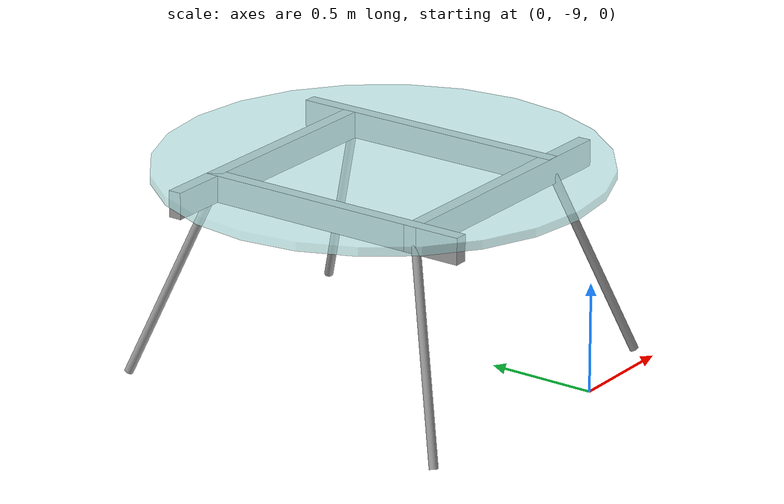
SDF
<?xml version='1.0'?>
<sdf version='1.7'>
  <model name='my_round_table'>
    <link name='link_0'>
      <inertial>
        <mass>1</mass>
        <inertia>
          <ixx>0.145833</ixx>
          <ixy>0</ixy>
          <ixz>0</ixz>
          <iyy>0.145833</iyy>
          <iyz>0</iyz>
          <izz>0.125</izz>
        </inertia>
        <pose>0 0 0 0 -0 0</pose>
      </inertial>
      <pose>-0.33877 -8.15163 0.5 0 -0 0</pose>
      <gravity>1</gravity>
      <self_collide>0</self_collide>
      <kinematic>0</kinematic>
      <enable_wind>0</enable_wind>
      <visual name='visual'>
        <pose>0 0 0.45 0 -0 0</pose>
        <geometry>
          <cylinder>
            <radius>1</radius>
            <length>0.04</length>
          </cylinder>
        </geometry>
        <material>
          <lighting>1</lighting>
          <script>
            <uri>file://media/materials/scripts/gazebo.material</uri>
            <name>Gazebo/Grey</name>
          </script>
          <shader type='pixel'>
            <normal_map>__default__</normal_map>
          </shader>
          <ambient>0.79 1 1 0.4</ambient>
          <diffuse>0.79 1 1 1</diffuse>
          <specular>0.01 0.01 0.01 1</specular>
          <emissive>0 0 0 1</emissive>
        </material>
        <transparency>0.3</transparency>
        <cast_shadows>1</cast_shadows>
      </visual>
      <collision name='collision'>
        <laser_retro>0</laser_retro>
        <max_contacts>10</max_contacts>
        <pose>0 0 0.45 0 -0 0</pose>
        <geometry>
          <cylinder>
            <radius>1</radius>
            <length>0.04</length>
          </cylinder>
        </geometry>
        <surface>
          <friction>
            <ode>
              <mu>1</mu>
              <mu2>1</mu2>
              <fdir1>0 0 0</fdir1>
              <slip1>0</slip1>
              <slip2>0</slip2>
            </ode>
            <torsional>
              <coefficient>1</coefficient>
              <patch_radius>0</patch_radius>
              <surface_radius>0</surface_radius>
              <use_patch_radius>1</use_patch_radius>
              <ode>
                <slip>0</slip>
              </ode>
            </torsional>
          </friction>
          <bounce>
            <restitution_coefficient>0</restitution_coefficient>
            <threshold>1e+06</threshold>
          </bounce>
          <contact>
            <collide_without_contact>0</collide_without_contact>
            <collide_without_contact_bitmask>1</collide_without_contact_bitmask>
            <collide_bitmask>1</collide_bitmask>
            <ode>
              <soft_cfm>0</soft_cfm>
              <soft_erp>0.2</soft_erp>
              <kp>1e+13</kp>
              <kd>1</kd>
              <max_vel>0.01</max_vel>
              <min_depth>0</min_depth>
            </ode>
            <bullet>
              <split_impulse>1</split_impulse>
              <split_impulse_penetration_threshold>-0.01</split_impulse_penetration_threshold>
              <soft_cfm>0</soft_cfm>
              <soft_erp>0.2</soft_erp>
              <kp>1e+13</kp>
              <kd>1</kd>
            </bullet>
          </contact>
        </surface>
      </collision>
    </link>
    <link name='link_0_0'>
      <inertial>
        <mass>1</mass>
        <inertia>
          <ixx>0.166667</ixx>
          <ixy>0</ixy>
          <ixz>0</ixz>
          <iyy>0.166667</iyy>
          <iyz>0</iyz>
          <izz>0.166667</izz>
        </inertia>
        <pose>0 0 0 0 -0 0</pose>
      </inertial>
      <pose>-0.834607 -8.25556 0.5 0 -0 0</pose>
      <gravity>1</gravity>
      <self_collide>0</self_collide>
      <kinematic>0</kinematic>
      <enable_wind>0</enable_wind>
      <visual name='visual'>
        <pose>0 0 0.4 0 -0 0</pose>
        <geometry>
          <box>
            <size>0.06 1.3 0.12</size>
          </box>
        </geometry>
        <material>
          <lighting>1</lighting>
          <script>
            <uri>file://media/materials/scripts/gazebo.material</uri>
            <name>Gazebo/Grey</name>
          </script>
          <shader type='pixel'>
            <normal_map>__default__</normal_map>
          </shader>
          <ambient>0.6 0.6 0.6 1</ambient>
          <diffuse>0.7 0.7 0.7 1</diffuse>
          <specular>0.01 0.01 0.01 1</specular>
          <emissive>0 0 0 1</emissive>
        </material>
        <transparency>0</transparency>
        <cast_shadows>1</cast_shadows>
      </visual>
      <collision name='collision'>
        <laser_retro>0</laser_retro>
        <max_contacts>10</max_contacts>
        <pose>0 0 0.4 0 -0 0</pose>
        <geometry>
          <box>
            <size>0.06 1.3 0.12</size>
          </box>
        </geometry>
        <surface>
          <friction>
            <ode>
              <mu>1</mu>
              <mu2>1</mu2>
              <fdir1>0 0 0</fdir1>
              <slip1>0</slip1>
              <slip2>0</slip2>
            </ode>
            <torsional>
              <coefficient>1</coefficient>
              <patch_radius>0</patch_radius>
              <surface_radius>0</surface_radius>
              <use_patch_radius>1</use_patch_radius>
              <ode>
                <slip>0</slip>
              </ode>
            </torsional>
          </friction>
          <bounce>
            <restitution_coefficient>0</restitution_coefficient>
            <threshold>1e+06</threshold>
          </bounce>
          <contact>
            <collide_without_contact>0</collide_without_contact>
            <collide_without_contact_bitmask>1</collide_without_contact_bitmask>
            <collide_bitmask>1</collide_bitmask>
            <ode>
              <soft_cfm>0</soft_cfm>
              <soft_erp>0.2</soft_erp>
              <kp>1e+13</kp>
              <kd>1</kd>
              <max_vel>0.01</max_vel>
              <min_depth>0</min_depth>
            </ode>
            <bullet>
              <split_impulse>1</split_impulse>
              <split_impulse_penetration_threshold>-0.01</split_impulse_penetration_threshold>
              <soft_cfm>0</soft_cfm>
              <soft_erp>0.2</soft_erp>
              <kp>1e+13</kp>
              <kd>1</kd>
            </bullet>
          </contact>
        </surface>
      </collision>
    </link>
    <link name='link_0_0_clone'>
      <inertial>
        <mass>1</mass>
        <inertia>
          <ixx>0.166667</ixx>
          <ixy>0</ixy>
          <ixz>0</ixz>
          <iyy>0.166667</iyy>
          <iyz>0</iyz>
          <izz>0.166667</izz>
        </inertia>
        <pose>0 0 0 0 -0 0</pose>
      </inertial>
      <pose>-0.470736 -7.63546 0.5 0 -0 0</pose>
      <gravity>1</gravity>
      <self_collide>0</self_collide>
      <kinematic>0</kinematic>
      <enable_wind>0</enable_wind>
      <visual name='visual_0'>
        <pose>0 0 0.4 0 -0 1.5707</pose>
        <geometry>
          <box>
            <size>0.06 1.3 0.12</size>
          </box>
        </geometry>
        <material>
          <lighting>1</lighting>
          <script>
            <uri>file://media/materials/scripts/gazebo.material</uri>
            <name>Gazebo/Grey</name>
          </script>
          <shader type='pixel'>
            <normal_map>__default__</normal_map>
          </shader>
          <ambient>0.6 0.6 0.6 1</ambient>
          <diffuse>0.7 0.7 0.7 1</diffuse>
          <specular>0.01 0.01 0.01 1</specular>
          <emissive>0 0 0 1</emissive>
        </material>
        <transparency>0</transparency>
        <cast_shadows>1</cast_shadows>
      </visual>
      <collision name='collision'>
        <laser_retro>0</laser_retro>
        <max_contacts>10</max_contacts>
        <pose>0 0 0.4 0 -0 1.5707</pose>
        <geometry>
          <box>
            <size>0.06 1.3 0.12</size>
          </box>
        </geometry>
        <surface>
          <friction>
            <ode>
              <mu>1</mu>
              <mu2>1</mu2>
              <fdir1>0 0 0</fdir1>
              <slip1>0</slip1>
              <slip2>0</slip2>
            </ode>
            <torsional>
              <coefficient>1</coefficient>
              <patch_radius>0</patch_radius>
              <surface_radius>0</surface_radius>
              <use_patch_radius>1</use_patch_radius>
              <ode>
                <slip>0</slip>
              </ode>
            </torsional>
          </friction>
          <bounce>
            <restitution_coefficient>0</restitution_coefficient>
            <threshold>1e+06</threshold>
          </bounce>
          <contact>
            <collide_without_contact>0</collide_without_contact>
            <collide_without_contact_bitmask>1</collide_without_contact_bitmask>
            <collide_bitmask>1</collide_bitmask>
            <ode>
              <soft_cfm>0</soft_cfm>
              <soft_erp>0.2</soft_erp>
              <kp>1e+13</kp>
              <kd>1</kd>
              <max_vel>0.01</max_vel>
              <min_depth>0</min_depth>
            </ode>
            <bullet>
              <split_impulse>1</split_impulse>
              <split_impulse_penetration_threshold>-0.01</split_impulse_penetration_threshold>
              <soft_cfm>0</soft_cfm>
              <soft_erp>0.2</soft_erp>
              <kp>1e+13</kp>
              <kd>1</kd>
            </bullet>
          </contact>
        </surface>
      </collision>
    </link>
    <link name='link_0_0_clone_0'>
      <inertial>
        <mass>1</mass>
        <inertia>
          <ixx>0.166667</ixx>
          <ixy>0</ixy>
          <ixz>0</ixz>
          <iyy>0.166667</iyy>
          <iyz>0</iyz>
          <izz>0.166667</izz>
        </inertia>
        <pose>0 0 0 0 -0 0</pose>
      </inertial>
      <pose>0.150666 -8.04578 0.5 0 -0 0</pose>
      <gravity>1</gravity>
      <self_collide>0</self_collide>
      <kinematic>0</kinematic>
      <enable_wind>0</enable_wind>
      <visual name='visual_0'>
        <pose>0 0 0.4 0 -0 0</pose>
        <geometry>
          <box>
            <size>0.06 1.3 0.12</size>
          </box>
        </geometry>
        <material>
          <lighting>1</lighting>
          <script>
            <uri>file://media/materials/scripts/gazebo.material</uri>
            <name>Gazebo/Grey</name>
          </script>
          <shader type='pixel'>
            <normal_map>__default__</normal_map>
          </shader>
          <ambient>0.6 0.6 0.6 1</ambient>
          <diffuse>0.7 0.7 0.7 1</diffuse>
          <specular>0.01 0.01 0.01 1</specular>
          <emissive>0 0 0 1</emissive>
        </material>
        <transparency>0</transparency>
        <cast_shadows>1</cast_shadows>
      </visual>
      <collision name='collision'>
        <laser_retro>0</laser_retro>
        <max_contacts>10</max_contacts>
        <pose>0 0 0.4 0 -0 0</pose>
        <geometry>
          <box>
            <size>0.06 1.3 0.12</size>
          </box>
        </geometry>
        <surface>
          <friction>
            <ode>
              <mu>1</mu>
              <mu2>1</mu2>
              <fdir1>0 0 0</fdir1>
              <slip1>0</slip1>
              <slip2>0</slip2>
            </ode>
            <torsional>
              <coefficient>1</coefficient>
              <patch_radius>0</patch_radius>
              <surface_radius>0</surface_radius>
              <use_patch_radius>1</use_patch_radius>
              <ode>
                <slip>0</slip>
              </ode>
            </torsional>
          </friction>
          <bounce>
            <restitution_coefficient>0</restitution_coefficient>
            <threshold>1e+06</threshold>
          </bounce>
          <contact>
            <collide_without_contact>0</collide_without_contact>
            <collide_without_contact_bitmask>1</collide_without_contact_bitmask>
            <collide_bitmask>1</collide_bitmask>
            <ode>
              <soft_cfm>0</soft_cfm>
              <soft_erp>0.2</soft_erp>
              <kp>1e+13</kp>
              <kd>1</kd>
              <max_vel>0.01</max_vel>
              <min_depth>0</min_depth>
            </ode>
            <bullet>
              <split_impulse>1</split_impulse>
              <split_impulse_penetration_threshold>-0.01</split_impulse_penetration_threshold>
              <soft_cfm>0</soft_cfm>
              <soft_erp>0.2</soft_erp>
              <kp>1e+13</kp>
              <kd>1</kd>
            </bullet>
          </contact>
        </surface>
      </collision>
    </link>
    <link name='link_0_0_clone_clone'>
      <inertial>
        <mass>1</mass>
        <inertia>
          <ixx>0.166667</ixx>
          <ixy>0</ixy>
          <ixz>0</ixz>
          <iyy>0.166667</iyy>
          <iyz>0</iyz>
          <izz>0.166667</izz>
        </inertia>
        <pose>0 0 0 0 -0 0</pose>
      </inertial>
      <pose>-0.215262 -8.66786 0.5 0 -0 0</pose>
      <gravity>1</gravity>
      <self_collide>0</self_collide>
      <kinematic>0</kinematic>
      <enable_wind>0</enable_wind>
      <visual name='visual_0'>
        <pose>0 0 0.4 0 -0 1.5707</pose>
        <geometry>
          <box>
            <size>0.06 1.3 0.12</size>
          </box>
        </geometry>
        <material>
          <lighting>1</lighting>
          <script>
            <uri>file://media/materials/scripts/gazebo.material</uri>
            <name>Gazebo/Grey</name>
          </script>
          <shader type='pixel'>
            <normal_map>__default__</normal_map>
          </shader>
          <ambient>0.6 0.6 0.6 1</ambient>
          <diffuse>0.7 0.7 0.7 1</diffuse>
          <specular>0.01 0.01 0.01 1</specular>
          <emissive>0 0 0 1</emissive>
        </material>
        <transparency>0</transparency>
        <cast_shadows>1</cast_shadows>
      </visual>
      <collision name='collision'>
        <laser_retro>0</laser_retro>
        <max_contacts>10</max_contacts>
        <pose>0 0 0.4 0 -0 1.5707</pose>
        <geometry>
          <box>
            <size>0.06 1.3 0.12</size>
          </box>
        </geometry>
        <surface>
          <friction>
            <ode>
              <mu>1</mu>
              <mu2>1</mu2>
              <fdir1>0 0 0</fdir1>
              <slip1>0</slip1>
              <slip2>0</slip2>
            </ode>
            <torsional>
              <coefficient>1</coefficient>
              <patch_radius>0</patch_radius>
              <surface_radius>0</surface_radius>
              <use_patch_radius>1</use_patch_radius>
              <ode>
                <slip>0</slip>
              </ode>
            </torsional>
          </friction>
          <bounce>
            <restitution_coefficient>0</restitution_coefficient>
            <threshold>1e+06</threshold>
          </bounce>
          <contact>
            <collide_without_contact>0</collide_without_contact>
            <collide_without_contact_bitmask>1</collide_without_contact_bitmask>
            <collide_bitmask>1</collide_bitmask>
            <ode>
              <soft_cfm>0</soft_cfm>
              <soft_erp>0.2</soft_erp>
              <kp>1e+13</kp>
              <kd>1</kd>
              <max_vel>0.01</max_vel>
              <min_depth>0</min_depth>
            </ode>
            <bullet>
              <split_impulse>1</split_impulse>
              <split_impulse_penetration_threshold>-0.01</split_impulse_penetration_threshold>
              <soft_cfm>0</soft_cfm>
              <soft_erp>0.2</soft_erp>
              <kp>1e+13</kp>
              <kd>1</kd>
            </bullet>
          </contact>
        </surface>
      </collision>
    </link>
    <link name='link_1_clone_1_clone_clone'>
      <inertial>
        <mass>1</mass>
        <inertia>
          <ixx>0.145833</ixx>
          <ixy>0</ixy>
          <ixz>0</ixz>
          <iyy>0.145833</iyy>
          <iyz>0</iyz>
          <izz>0.125</izz>
        </inertia>
        <pose>0 0 0 0 -0 0</pose>
      </inertial>
      <pose>-0.929071 -7.47144 0.501681 0 0 -0.237389</pose>
      <gravity>1</gravity>
      <self_collide>0</self_collide>
      <kinematic>0</kinematic>
      <enable_wind>0</enable_wind>
      <visual name='visual'>
        <pose>0 0 -0.02 0.3 0.3 0</pose>
        <geometry>
          <cylinder>
            <radius>0.02</radius>
            <length>1</length>
          </cylinder>
        </geometry>
        <material>
          <lighting>1</lighting>
          <script>
            <uri>file://media/materials/scripts/gazebo.material</uri>
            <name>Gazebo/Grey</name>
          </script>
          <shader type='pixel'>
            <normal_map>__default__</normal_map>
          </shader>
          <ambient>0.5 0.5 0.5 1</ambient>
          <diffuse>0.8 0.8 0.8 1</diffuse>
          <specular>0.01 0.01 0.01 1</specular>
          <emissive>0 0 0 1</emissive>
        </material>
        <transparency>0</transparency>
        <cast_shadows>1</cast_shadows>
      </visual>
      <collision name='collision'>
        <laser_retro>0</laser_retro>
        <max_contacts>10</max_contacts>
        <pose>0 0 -0.02 0.3 0.3 0</pose>
        <geometry>
          <cylinder>
            <radius>0.02</radius>
            <length>1</length>
          </cylinder>
        </geometry>
        <surface>
          <friction>
            <ode>
              <mu>1</mu>
              <mu2>1</mu2>
              <fdir1>0 0 0</fdir1>
              <slip1>0</slip1>
              <slip2>0</slip2>
            </ode>
            <torsional>
              <coefficient>1</coefficient>
              <patch_radius>0</patch_radius>
              <surface_radius>0</surface_radius>
              <use_patch_radius>1</use_patch_radius>
              <ode>
                <slip>0</slip>
              </ode>
            </torsional>
          </friction>
          <bounce>
            <restitution_coefficient>0</restitution_coefficient>
            <threshold>1e+06</threshold>
          </bounce>
          <contact>
            <collide_without_contact>0</collide_without_contact>
            <collide_without_contact_bitmask>1</collide_without_contact_bitmask>
            <collide_bitmask>1</collide_bitmask>
            <ode>
              <soft_cfm>0</soft_cfm>
              <soft_erp>0.2</soft_erp>
              <kp>1e+13</kp>
              <kd>1</kd>
              <max_vel>0.01</max_vel>
              <min_depth>0</min_depth>
            </ode>
            <bullet>
              <split_impulse>1</split_impulse>
              <split_impulse_penetration_threshold>-0.01</split_impulse_penetration_threshold>
              <soft_cfm>0</soft_cfm>
              <soft_erp>0.2</soft_erp>
              <kp>1e+13</kp>
              <kd>1</kd>
            </bullet>
          </contact>
        </surface>
      </collision>
    </link>
    <link name='link_1_clone_1_clone_clone_clone'>
      <inertial>
        <mass>1</mass>
        <inertia>
          <ixx>0.145833</ixx>
          <ixy>0</ixy>
          <ixz>0</ixz>
          <iyy>0.145833</iyy>
          <iyz>0</iyz>
          <izz>0.125</izz>
        </inertia>
        <pose>0 0 0 0 -0 0</pose>
      </inertial>
      <pose>-0.965306 -8.81368 0.501681 0 -0 1.63052</pose>
      <gravity>1</gravity>
      <self_collide>0</self_collide>
      <kinematic>0</kinematic>
      <enable_wind>0</enable_wind>
      <visual name='visual'>
        <pose>0 0 -0.02 0.3 0.3 0</pose>
        <geometry>
          <cylinder>
            <radius>0.02</radius>
            <length>1</length>
          </cylinder>
        </geometry>
        <material>
          <lighting>1</lighting>
          <script>
            <uri>file://media/materials/scripts/gazebo.material</uri>
            <name>Gazebo/Grey</name>
          </script>
          <shader type='pixel'>
            <normal_map>__default__</normal_map>
          </shader>
          <ambient>0.5 0.5 0.5 1</ambient>
          <diffuse>0.8 0.8 0.8 1</diffuse>
          <specular>0.01 0.01 0.01 1</specular>
          <emissive>0 0 0 1</emissive>
        </material>
        <transparency>0</transparency>
        <cast_shadows>1</cast_shadows>
      </visual>
      <collision name='collision'>
        <laser_retro>0</laser_retro>
        <max_contacts>10</max_contacts>
        <pose>0 0 -0.02 0.3 0.3 0</pose>
        <geometry>
          <cylinder>
            <radius>0.02</radius>
            <length>1</length>
          </cylinder>
        </geometry>
        <surface>
          <friction>
            <ode>
              <mu>1</mu>
              <mu2>1</mu2>
              <fdir1>0 0 0</fdir1>
              <slip1>0</slip1>
              <slip2>0</slip2>
            </ode>
            <torsional>
              <coefficient>1</coefficient>
              <patch_radius>0</patch_radius>
              <surface_radius>0</surface_radius>
              <use_patch_radius>1</use_patch_radius>
              <ode>
                <slip>0</slip>
              </ode>
            </torsional>
          </friction>
          <bounce>
            <restitution_coefficient>0</restitution_coefficient>
            <threshold>1e+06</threshold>
          </bounce>
          <contact>
            <collide_without_contact>0</collide_without_contact>
            <collide_without_contact_bitmask>1</collide_without_contact_bitmask>
            <collide_bitmask>1</collide_bitmask>
            <ode>
              <soft_cfm>0</soft_cfm>
              <soft_erp>0.2</soft_erp>
              <kp>1e+13</kp>
              <kd>1</kd>
              <max_vel>0.01</max_vel>
              <min_depth>0</min_depth>
            </ode>
            <bullet>
              <split_impulse>1</split_impulse>
              <split_impulse_penetration_threshold>-0.01</split_impulse_penetration_threshold>
              <soft_cfm>0</soft_cfm>
              <soft_erp>0.2</soft_erp>
              <kp>1e+13</kp>
              <kd>1</kd>
            </bullet>
          </contact>
        </surface>
      </collision>
    </link>
    <link name='link_1_clone_1_clone_clone_clone_0'>
      <inertial>
        <mass>1</mass>
        <inertia>
          <ixx>0.145833</ixx>
          <ixy>0</ixy>
          <ixz>0</ixz>
          <iyy>0.145833</iyy>
          <iyz>0</iyz>
          <izz>0.125</izz>
        </inertia>
        <pose>0 0 0 0 -0 0</pose>
      </inertial>
      <pose>0.275919 -7.4779 0.501681 0 0 -1.39702</pose>
      <gravity>1</gravity>
      <self_collide>0</self_collide>
      <kinematic>0</kinematic>
      <enable_wind>0</enable_wind>
      <visual name='visual'>
        <pose>0 0 -0.02 0.3 0.3 0</pose>
        <geometry>
          <cylinder>
            <radius>0.02</radius>
            <length>1</length>
          </cylinder>
        </geometry>
        <material>
          <lighting>1</lighting>
          <script>
            <uri>file://media/materials/scripts/gazebo.material</uri>
            <name>Gazebo/Grey</name>
          </script>
          <shader type='pixel'>
            <normal_map>__default__</normal_map>
          </shader>
          <ambient>0.5 0.5 0.5 1</ambient>
          <diffuse>0.8 0.8 0.8 1</diffuse>
          <specular>0.01 0.01 0.01 1</specular>
          <emissive>0 0 0 1</emissive>
        </material>
        <transparency>0</transparency>
        <cast_shadows>1</cast_shadows>
      </visual>
      <collision name='collision'>
        <laser_retro>0</laser_retro>
        <max_contacts>10</max_contacts>
        <pose>0 0 0 0.3 0.3 0</pose>
        <geometry>
          <cylinder>
            <radius>0.02</radius>
            <length>1</length>
          </cylinder>
        </geometry>
        <surface>
          <friction>
            <ode>
              <mu>1</mu>
              <mu2>1</mu2>
              <fdir1>0 0 0</fdir1>
              <slip1>0</slip1>
              <slip2>0</slip2>
            </ode>
            <torsional>
              <coefficient>1</coefficient>
              <patch_radius>0</patch_radius>
              <surface_radius>0</surface_radius>
              <use_patch_radius>1</use_patch_radius>
              <ode>
                <slip>0</slip>
              </ode>
            </torsional>
          </friction>
          <bounce>
            <restitution_coefficient>0</restitution_coefficient>
            <threshold>1e+06</threshold>
          </bounce>
          <contact>
            <collide_without_contact>0</collide_without_contact>
            <collide_without_contact_bitmask>1</collide_without_contact_bitmask>
            <collide_bitmask>1</collide_bitmask>
            <ode>
              <soft_cfm>0</soft_cfm>
              <soft_erp>0.2</soft_erp>
              <kp>1e+13</kp>
              <kd>1</kd>
              <max_vel>0.01</max_vel>
              <min_depth>0</min_depth>
            </ode>
            <bullet>
              <split_impulse>1</split_impulse>
              <split_impulse_penetration_threshold>-0.01</split_impulse_penetration_threshold>
              <soft_cfm>0</soft_cfm>
              <soft_erp>0.2</soft_erp>
              <kp>1e+13</kp>
              <kd>1</kd>
            </bullet>
          </contact>
        </surface>
      </collision>
    </link>
    <link name='link_1_clone_1_clone_clone_clone_0_clone'>
      <inertial>
        <mass>1</mass>
        <inertia>
          <ixx>0.145833</ixx>
          <ixy>0</ixy>
          <ixz>0</ixz>
          <iyy>0.145833</iyy>
          <iyz>0</iyz>
          <izz>0.125</izz>
        </inertia>
        <pose>0 0 0 0 -0 0</pose>
      </inertial>
      <pose>0.309037 -8.79302 0.501681 0 0 -3.03586</pose>
      <gravity>1</gravity>
      <self_collide>0</self_collide>
      <kinematic>0</kinematic>
      <enable_wind>0</enable_wind>
      <visual name='visual'>
        <pose>0 0 -0.02 0.3 0.3 0</pose>
        <geometry>
          <cylinder>
            <radius>0.02</radius>
            <length>1</length>
          </cylinder>
        </geometry>
        <material>
          <lighting>1</lighting>
          <script>
            <uri>file://media/materials/scripts/gazebo.material</uri>
            <name>Gazebo/Grey</name>
          </script>
          <shader type='pixel'>
            <normal_map>__default__</normal_map>
          </shader>
          <ambient>0.5 0.5 0.5 1</ambient>
          <diffuse>0.8 0.8 0.8 1</diffuse>
          <specular>0.01 0.01 0.01 1</specular>
          <emissive>0 0 0 1</emissive>
        </material>
        <transparency>0</transparency>
        <cast_shadows>1</cast_shadows>
      </visual>
      <collision name='collision'>
        <laser_retro>0</laser_retro>
        <max_contacts>10</max_contacts>
        <pose>0 0 -0.02 0.3 0.3 0</pose>
        <geometry>
          <cylinder>
            <radius>0.02</radius>
            <length>1</length>
          </cylinder>
        </geometry>
        <surface>
          <friction>
            <ode>
              <mu>1</mu>
              <mu2>1</mu2>
              <fdir1>0 0 0</fdir1>
              <slip1>0</slip1>
              <slip2>0</slip2>
            </ode>
            <torsional>
              <coefficient>1</coefficient>
              <patch_radius>0</patch_radius>
              <surface_radius>0</surface_radius>
              <use_patch_radius>1</use_patch_radius>
              <ode>
                <slip>0</slip>
              </ode>
            </torsional>
          </friction>
          <bounce>
            <restitution_coefficient>0</restitution_coefficient>
            <threshold>1e+06</threshold>
          </bounce>
          <contact>
            <collide_without_contact>0</collide_without_contact>
            <collide_without_contact_bitmask>1</collide_without_contact_bitmask>
            <collide_bitmask>1</collide_bitmask>
            <ode>
              <soft_cfm>0</soft_cfm>
              <soft_erp>0.2</soft_erp>
              <kp>1e+13</kp>
              <kd>1</kd>
              <max_vel>0.01</max_vel>
              <min_depth>0</min_depth>
            </ode>
            <bullet>
              <split_impulse>1</split_impulse>
              <split_impulse_penetration_threshold>-0.01</split_impulse_penetration_threshold>
              <soft_cfm>0</soft_cfm>
              <soft_erp>0.2</soft_erp>
              <kp>1e+13</kp>
              <kd>1</kd>
            </bullet>
          </contact>
        </surface>
      </collision>
    </link>
    <static>1</static>
    <allow_auto_disable>1</allow_auto_disable>
  </model>
</sdf>
